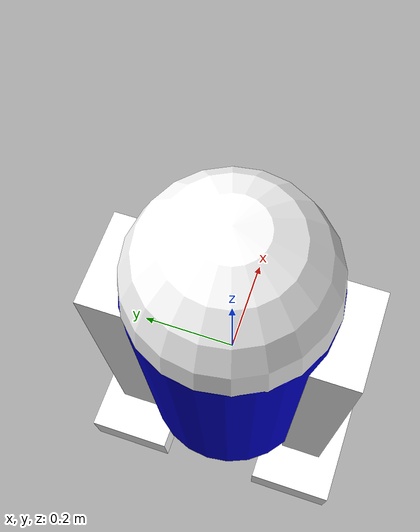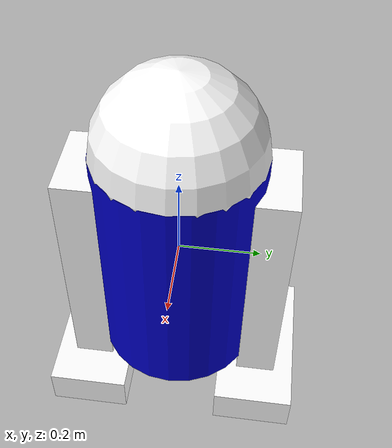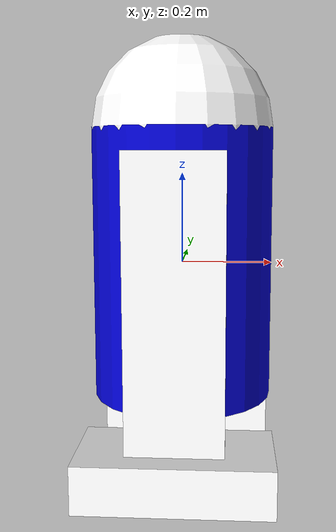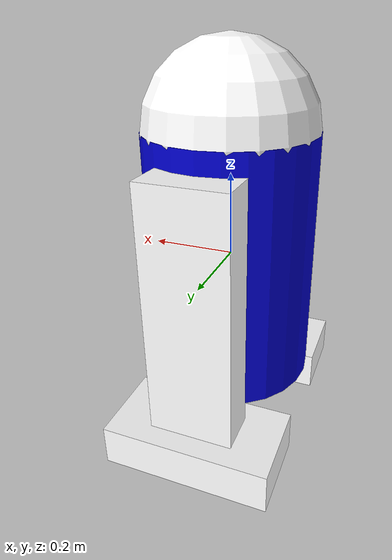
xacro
<?xml version="1.0"?>

<!-- THIS IS A TEST XACRO FILE AND NOT PART OF A ROBMOBILE REPO -->

<robot name="myfirst">

  <!-- BEGIN: materials colors -->
  <material name="blue">
    <color rgba="0 0 0.8 1"/>
  </material>

  <material name="white">
    <color rgba="1 1 1 1"/>
  </material>
  <!-- END: materials colors -->

  <link name="base_link">
    <visual>
      <geometry>
        <cylinder length="0.6" radius="0.2"/>
      </geometry>
      <material name="blue"/>
    </visual>
    <collision>
      <geometry>
        <cylinder length="0.6" radius="0.2"/>
      </geometry>
    </collision>
    <inertial>
      <mass value="10"/>
      <inertia ixx="0.4" ixy="0.0" ixz="0.0" iyy="0.4" iyz="0.0" izz="0.2"/>
    </inertial>
  </link>

  <link name="right_leg">
    <visual>
      <geometry>
        <box size="0.6 0.1 0.2"/>
      </geometry>
      <material name="white"/>
      <origin xyz="0.0 0.0 -0.3" rpy="0.0 1.57075 0.0"/> <!-- x y z is the cordinates of origin w.r.t to base link-->
    </visual>
  </link>

  <joint name="base_to_right_leg" type="fixed">
    <parent link="base_link"/>
    <child link="right_leg"/>
    <origin xyz="0 -0.22 0.25" rpy="0.0 0.0 0.0"/>
  </joint>

  <link name="left_leg">
    <visual>
      <geometry>
        <box size="0.6 0.1 0.2"/>
      </geometry>
      <material name="white"/>
      <origin xyz="0.0 0.0 -0.3" rpy="0.0 1.57075 0.0"/>
    </visual>
  </link>

  <joint name="base_to_left_leg" type="fixed">
    <parent link="base_link"/>
    <child link="left_leg"/>
    <origin xyz="0 0.22 0.25" rpy="0.0 0.0 0.0"/>
  </joint>

  <link name="top_head">
    <visual>
      <geometry>
        <sphere radius="0.2"/>
      </geometry>
      <material name="white"/>
    </visual>
  </link>

  <joint name="base_to_head" type="fixed">
    <parent link="base_link"/>
    <child link="top_head"/>
    <origin xyz="0.0 0.0 0.3" rpy="0.0 0.0 0.0"/>
  </joint>

  <link name="left_tip">
    <visual>
      <geometry>
        <box size="0.4 0.2 0.1"/>
      </geometry>
      <material name="white"/>
    </visual>
  </link>

  <joint name="left_leg_to_tip" type="fixed">
    <parent link="left_leg"/>
    <child link="left_tip"/>
    <origin xyz="0.0 0.0 -0.65" rpy="0.0 0.0 0.0"/> <!-- 0.6 + box_ht_z/2 = 0.65 -->
  </joint>

  <link name="right_tip">
    <visual>
      <geometry>
        <box size="0.4 0.2 0.1"/>
      </geometry>
      <material name="white"/>
    </visual>
  </link>

  <joint name="right_leg_to_tip" type="fixed">
    <parent link="right_leg"/>
    <child link="right_tip"/>
    <origin xyz="0.0 0.0 -0.65" rpy="0.0 0.0 0.0"/> <!-- 0.6 + box_ht_z/2 = 0.65 -->
  </joint>

</robot>
